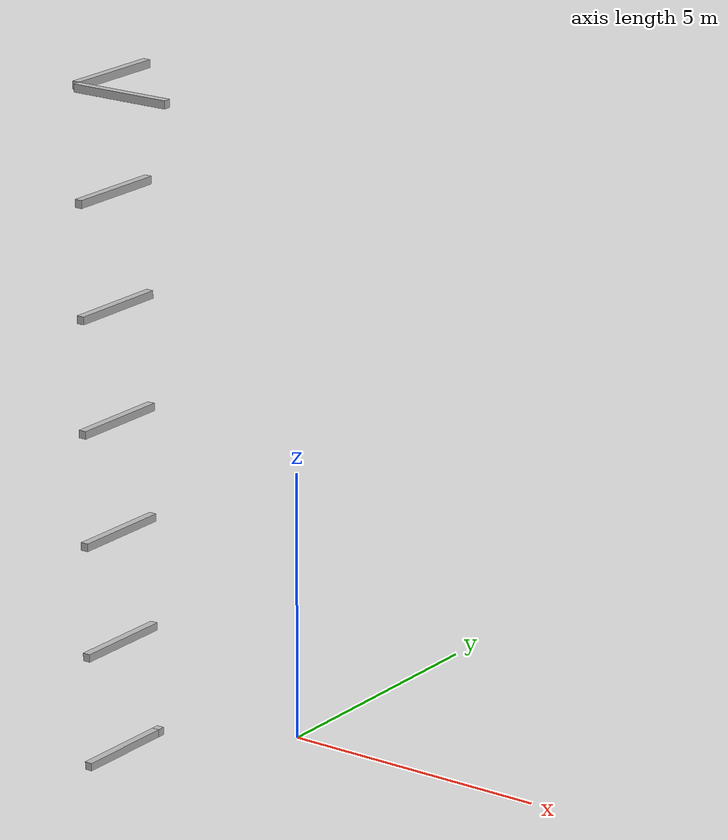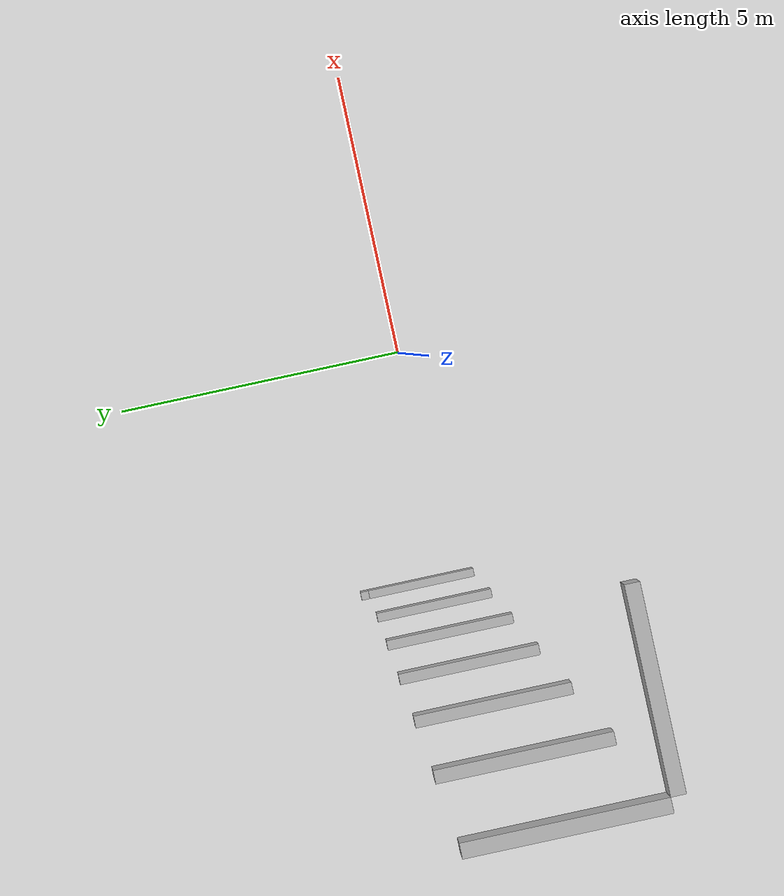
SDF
<sdf version="1.7">
 <world name="default">
  <model name="orthogonal_747_2.000.15_TS">
   <static>1</static>
   <link name="y_link_0_2_1">
    <inertial>
     <mass>1</mass>
     <inertia>
      <ixx>0.166667</ixx>
      <ixy>0</ixy>
      <ixz>0</ixz>
      <iyy>0.166667</iyy>
      <iyz>0</iyz>
      <izz>0.166667</izz>
     </inertia>
    </inertial>
    <pose>2.15 5.375 1.075 0 -0 0</pose>
    <visual name="visual_0">
     <laser_retro>351</laser_retro>
     <geometry><box><size>0.15 1e-06 0.15</size></box></geometry>
     <material>
      <script><name>Gazebo/Grey</name><uri>file://media/materials/scripts/gazebo.material</uri></script>
      <shader type="pixel"><normal_map>__default__</normal_map></shader>
      <ambient>0.678 0.498 0.659 1</ambient>
      <diffuse>0.7 0.7 0.7 1</diffuse>
      <specular>0.01 0.01 0.01 1</specular>
      <emissive>0 0 0 1</emissive>
     </material>
     <pose>0 -1 0 0 -0 0</pose>
     <transparency>1</transparency>
    </visual>
    <visual name="visual_1">
     <laser_retro>352</laser_retro>
     <geometry><box><size>0.15 1e-06 0.15</size></box></geometry>
     <material>
      <script><name>Gazebo/Grey</name><uri>file://media/materials/scripts/gazebo.material</uri></script>
      <shader type="pixel"><normal_map>__default__</normal_map></shader>
      <ambient>0.447 0.624 0.812 1</ambient>
      <diffuse>0.7 0.7 0.7 1</diffuse>
      <specular>0.01 0.01 0.01 1</specular>
      <emissive>0 0 0 1</emissive>
     </material>
     <pose>0 1 0 0 -0 0</pose>
     <transparency>1</transparency>
    </visual>
    <visual name="visual_2">
     <laser_retro>353</laser_retro>
     <geometry><box><size>0.15 2 1e-06</size></box></geometry>
     <material>
      <script><name>Gazebo/Grey</name><uri>file://media/materials/scripts/gazebo.material</uri></script>
      <shader type="pixel"><normal_map>__default__</normal_map></shader>
      <ambient>0.988 0.686 0.243 1</ambient>
      <diffuse>0.7 0.7 0.7 1</diffuse>
      <specular>0.01 0.01 0.01 1</specular>
      <emissive>0 0 0 1</emissive>
     </material>
     <pose>0 0 -0.075 0 -0 0</pose>
     <transparency>1</transparency>
    </visual>
    <visual name="visual_3">
     <laser_retro>354</laser_retro>
     <geometry><box><size>1e-06 2 0.15</size></box></geometry>
     <material>
      <script><name>Gazebo/Grey</name><uri>file://media/materials/scripts/gazebo.material</uri></script>
      <shader type="pixel"><normal_map>__default__</normal_map></shader>
      <ambient>0.988 0.914 0.31 1</ambient>
      <diffuse>0.7 0.7 0.7 1</diffuse>
      <specular>0.01 0.01 0.01 1</specular>
      <emissive>0 0 0 1</emissive>
     </material>
     <pose>0.075 0 0 0 -0 0</pose>
     <transparency>1</transparency>
    </visual>
    <visual name="visual_4">
     <laser_retro>355</laser_retro>
     <geometry><box><size>0.15 2 1e-06</size></box></geometry>
     <material>
      <script><name>Gazebo/Grey</name><uri>file://media/materials/scripts/gazebo.material</uri></script>
      <shader type="pixel"><normal_map>__default__</normal_map></shader>
      <ambient>0.937 0.161 0.161 1</ambient>
      <diffuse>0.7 0.7 0.7 1</diffuse>
      <specular>0.01 0.01 0.01 1</specular>
      <emissive>0 0 0 1</emissive>
     </material>
     <pose>0 0 0.075 0 -0 0</pose>
     <transparency>1</transparency>
    </visual>
    <visual name="visual_5">
     <laser_retro>356</laser_retro>
     <geometry><box><size>1e-06 2 0.15</size></box></geometry>
     <material>
      <script><name>Gazebo/Grey</name><uri>file://media/materials/scripts/gazebo.material</uri></script>
      <shader type="pixel"><normal_map>__default__</normal_map></shader>
      <ambient>0.541 0.886 0.204 1</ambient>
      <diffuse>0.7 0.7 0.7 1</diffuse>
      <specular>0.01 0.01 0.01 1</specular>
      <emissive>0 0 0 1</emissive>
     </material>
     <pose>-0.075 0 0 0 -0 0</pose>
     <transparency>1</transparency>
    </visual>
    <visual name="visual_texture">
     <geometry><box><size>0.149985 1.9998 0.149985</size></box></geometry>
     <material>
      <script>
       <uri>model://BASE_MODELS/simple_block_v2_textured/materials/scripts</uri>
       <uri>model://BASE_MODELS/simple_block_v2_textured/materials/textures</uri>
       <name>metal</name>
      </script>
     </material>
     <laser_retro>357</laser_retro>
    </visual>
    <collision name="collision">
     <geometry><box><size>0.15 2 0.15</size></box></geometry>
     <surface>
      <friction>
       <ode><mu>1</mu><mu2>1</mu2><fdir1>0 0 0</fdir1><slip1>0</slip1><slip2>0</slip2></ode>
       <torsional>
        <coefficient>1</coefficient>
        <patch_radius>0</patch_radius>
        <surface_radius>0</surface_radius>
        <use_patch_radius>1</use_patch_radius>
        <ode><slip>0</slip></ode>
       </torsional>
      </friction>
      <bounce><restitution_coefficient>0</restitution_coefficient><threshold>1e+06</threshold></bounce>
      <contact>
       <collide_without_contact>0</collide_without_contact>
       <collide_without_contact_bitmask>1</collide_without_contact_bitmask>
       <collide_bitmask>1</collide_bitmask>
       <ode>
        <soft_cfm>0</soft_cfm>
        <soft_erp>0.2</soft_erp>
        <kp>1e+13</kp>
        <kd>1</kd>
        <max_vel>0.01</max_vel>
        <min_depth>0</min_depth>
       </ode>
       <bullet>
        <split_impulse>1</split_impulse>
        <split_impulse_penetration_threshold>-0.01</split_impulse_penetration_threshold>
        <soft_cfm>0</soft_cfm>
        <soft_erp>0.2</soft_erp>
        <kp>1e+13</kp>
        <kd>1</kd>
       </bullet>
      </contact>
     </surface>
    </collision>
   </link>
   <link name="u_link_0_3_1">
    <inertial>
     <mass>1</mass>
     <inertia>
      <ixx>0.166667</ixx>
      <ixy>0</ixy>
      <ixz>0</ixz>
      <iyy>0.166667</iyy>
      <iyz>0</iyz>
      <izz>0.166667</izz>
     </inertia>
    </inertial>
    <pose>2.15 6.45 1.075 0 -0 0</pose>
    <visual name="visual_0">
     <laser_retro>519</laser_retro>
     <geometry><box><size>0.15 1e-06 0.15</size></box></geometry>
     <material>
      <script><name>Gazebo/Grey</name><uri>file://media/materials/scripts/gazebo.material</uri></script>
      <shader type="pixel"><normal_map>__default__</normal_map></shader>
      <ambient>0.678 0.498 0.659 1</ambient>
      <diffuse>0.7 0.7 0.7 1</diffuse>
      <specular>0.01 0.01 0.01 1</specular>
      <emissive>0 0 0 1</emissive>
     </material>
     <pose>0 -0.075 0 0 -0 0</pose>
     <transparency>1</transparency>
    </visual>
    <visual name="visual_1">
     <laser_retro>520</laser_retro>
     <geometry><box><size>0.15 1e-06 0.15</size></box></geometry>
     <material>
      <script><name>Gazebo/Grey</name><uri>file://media/materials/scripts/gazebo.material</uri></script>
      <shader type="pixel"><normal_map>__default__</normal_map></shader>
      <ambient>0.447 0.624 0.812 1</ambient>
      <diffuse>0.7 0.7 0.7 1</diffuse>
      <specular>0.01 0.01 0.01 1</specular>
      <emissive>0 0 0 1</emissive>
     </material>
     <pose>0 0.075 0 0 -0 0</pose>
     <transparency>1</transparency>
    </visual>
    <visual name="visual_2">
     <laser_retro>521</laser_retro>
     <geometry><box><size>0.15 0.15 1e-06</size></box></geometry>
     <material>
      <script><name>Gazebo/Grey</name><uri>file://media/materials/scripts/gazebo.material</uri></script>
      <shader type="pixel"><normal_map>__default__</normal_map></shader>
      <ambient>0.988 0.686 0.243 1</ambient>
      <diffuse>0.7 0.7 0.7 1</diffuse>
      <specular>0.01 0.01 0.01 1</specular>
      <emissive>0 0 0 1</emissive>
     </material>
     <pose>0 0 -0.075 0 -0 0</pose>
     <transparency>1</transparency>
    </visual>
    <visual name="visual_3">
     <laser_retro>522</laser_retro>
     <geometry><box><size>1e-06 0.15 0.15</size></box></geometry>
     <material>
      <script><name>Gazebo/Grey</name><uri>file://media/materials/scripts/gazebo.material</uri></script>
      <shader type="pixel"><normal_map>__default__</normal_map></shader>
      <ambient>0.988 0.914 0.31 1</ambient>
      <diffuse>0.7 0.7 0.7 1</diffuse>
      <specular>0.01 0.01 0.01 1</specular>
      <emissive>0 0 0 1</emissive>
     </material>
     <pose>0.075 0 0 0 -0 0</pose>
     <transparency>1</transparency>
    </visual>
    <visual name="visual_4">
     <laser_retro>523</laser_retro>
     <geometry><box><size>0.15 0.15 1e-06</size></box></geometry>
     <material>
      <script><name>Gazebo/Grey</name><uri>file://media/materials/scripts/gazebo.material</uri></script>
      <shader type="pixel"><normal_map>__default__</normal_map></shader>
      <ambient>0.937 0.161 0.161 1</ambient>
      <diffuse>0.7 0.7 0.7 1</diffuse>
      <specular>0.01 0.01 0.01 1</specular>
      <emissive>0 0 0 1</emissive>
     </material>
     <pose>0 0 0.075 0 -0 0</pose>
     <transparency>1</transparency>
    </visual>
    <visual name="visual_5">
     <laser_retro>524</laser_retro>
     <geometry><box><size>1e-06 0.15 0.15</size></box></geometry>
     <material>
      <script><name>Gazebo/Grey</name><uri>file://media/materials/scripts/gazebo.material</uri></script>
      <shader type="pixel"><normal_map>__default__</normal_map></shader>
      <ambient>0.541 0.886 0.204 1</ambient>
      <diffuse>0.7 0.7 0.7 1</diffuse>
      <specular>0.01 0.01 0.01 1</specular>
      <emissive>0 0 0 1</emissive>
     </material>
     <pose>-0.075 0 0 0 -0 0</pose>
     <transparency>1</transparency>
    </visual>
    <visual name="visual_texture">
     <geometry><box><size>0.149985 0.149985 0.149985</size></box></geometry>
     <material>
      <script>
       <uri>model://BASE_MODELS/simple_block_v2_textured/materials/scripts</uri>
       <uri>model://BASE_MODELS/simple_block_v2_textured/materials/textures</uri>
       <name>metal</name>
      </script>
     </material>
     <laser_retro>525</laser_retro>
    </visual>
    <collision name="collision">
     <geometry><box><size>0.15 0.15 0.15</size></box></geometry>
     <surface>
      <friction>
       <ode><mu>1</mu><mu2>1</mu2><fdir1>0 0 0</fdir1><slip1>0</slip1><slip2>0</slip2></ode>
       <torsional>
        <coefficient>1</coefficient>
        <patch_radius>0</patch_radius>
        <surface_radius>0</surface_radius>
        <use_patch_radius>1</use_patch_radius>
        <ode><slip>0</slip></ode>
       </torsional>
      </friction>
      <bounce><restitution_coefficient>0</restitution_coefficient><threshold>1e+06</threshold></bounce>
      <contact>
       <collide_without_contact>0</collide_without_contact>
       <collide_without_contact_bitmask>1</collide_without_contact_bitmask>
       <collide_bitmask>1</collide_bitmask>
       <ode>
        <soft_cfm>0</soft_cfm>
        <soft_erp>0.2</soft_erp>
        <kp>1e+13</kp>
        <kd>1</kd>
        <max_vel>0.01</max_vel>
        <min_depth>0</min_depth>
       </ode>
       <bullet>
        <split_impulse>1</split_impulse>
        <split_impulse_penetration_threshold>-0.01</split_impulse_penetration_threshold>
        <soft_cfm>0</soft_cfm>
        <soft_erp>0.2</soft_erp>
        <kp>1e+13</kp>
        <kd>1</kd>
       </bullet>
      </contact>
     </surface>
    </collision>
   </link>
   <link name="y_link_1_2_1">
    <inertial>
     <mass>1</mass>
     <inertia>
      <ixx>0.166667</ixx>
      <ixy>0</ixy>
      <ixz>0</ixz>
      <iyy>0.166667</iyy>
      <iyz>0</iyz>
      <izz>0.166667</izz>
     </inertia>
    </inertial>
    <pose>2.15 5.375 3.225 0 -0 0</pose>
    <visual name="visual_0">
     <laser_retro>1177</laser_retro>
     <geometry><box><size>0.15 1e-06 0.15</size></box></geometry>
     <material>
      <script><name>Gazebo/Grey</name><uri>file://media/materials/scripts/gazebo.material</uri></script>
      <shader type="pixel"><normal_map>__default__</normal_map></shader>
      <ambient>0.678 0.498 0.659 1</ambient>
      <diffuse>0.7 0.7 0.7 1</diffuse>
      <specular>0.01 0.01 0.01 1</specular>
      <emissive>0 0 0 1</emissive>
     </material>
     <pose>0 -1 0 0 -0 0</pose>
     <transparency>1</transparency>
    </visual>
    <visual name="visual_1">
     <laser_retro>1178</laser_retro>
     <geometry><box><size>0.15 1e-06 0.15</size></box></geometry>
     <material>
      <script><name>Gazebo/Grey</name><uri>file://media/materials/scripts/gazebo.material</uri></script>
      <shader type="pixel"><normal_map>__default__</normal_map></shader>
      <ambient>0.447 0.624 0.812 1</ambient>
      <diffuse>0.7 0.7 0.7 1</diffuse>
      <specular>0.01 0.01 0.01 1</specular>
      <emissive>0 0 0 1</emissive>
     </material>
     <pose>0 1 0 0 -0 0</pose>
     <transparency>1</transparency>
    </visual>
    <visual name="visual_2">
     <laser_retro>1179</laser_retro>
     <geometry><box><size>0.15 2 1e-06</size></box></geometry>
     <material>
      <script><name>Gazebo/Grey</name><uri>file://media/materials/scripts/gazebo.material</uri></script>
      <shader type="pixel"><normal_map>__default__</normal_map></shader>
      <ambient>0.988 0.686 0.243 1</ambient>
      <diffuse>0.7 0.7 0.7 1</diffuse>
      <specular>0.01 0.01 0.01 1</specular>
      <emissive>0 0 0 1</emissive>
     </material>
     <pose>0 0 -0.075 0 -0 0</pose>
     <transparency>1</transparency>
    </visual>
    <visual name="visual_3">
     <laser_retro>1180</laser_retro>
     <geometry><box><size>1e-06 2 0.15</size></box></geometry>
     <material>
      <script><name>Gazebo/Grey</name><uri>file://media/materials/scripts/gazebo.material</uri></script>
      <shader type="pixel"><normal_map>__default__</normal_map></shader>
      <ambient>0.988 0.914 0.31 1</ambient>
      <diffuse>0.7 0.7 0.7 1</diffuse>
      <specular>0.01 0.01 0.01 1</specular>
      <emissive>0 0 0 1</emissive>
     </material>
     <pose>0.075 0 0 0 -0 0</pose>
     <transparency>1</transparency>
    </visual>
    <visual name="visual_4">
     <laser_retro>1181</laser_retro>
     <geometry><box><size>0.15 2 1e-06</size></box></geometry>
     <material>
      <script><name>Gazebo/Grey</name><uri>file://media/materials/scripts/gazebo.material</uri></script>
      <shader type="pixel"><normal_map>__default__</normal_map></shader>
      <ambient>0.937 0.161 0.161 1</ambient>
      <diffuse>0.7 0.7 0.7 1</diffuse>
      <specular>0.01 0.01 0.01 1</specular>
      <emissive>0 0 0 1</emissive>
     </material>
     <pose>0 0 0.075 0 -0 0</pose>
     <transparency>1</transparency>
    </visual>
    <visual name="visual_5">
     <laser_retro>1182</laser_retro>
     <geometry><box><size>1e-06 2 0.15</size></box></geometry>
     <material>
      <script><name>Gazebo/Grey</name><uri>file://media/materials/scripts/gazebo.material</uri></script>
      <shader type="pixel"><normal_map>__default__</normal_map></shader>
      <ambient>0.541 0.886 0.204 1</ambient>
      <diffuse>0.7 0.7 0.7 1</diffuse>
      <specular>0.01 0.01 0.01 1</specular>
      <emissive>0 0 0 1</emissive>
     </material>
     <pose>-0.075 0 0 0 -0 0</pose>
     <transparency>1</transparency>
    </visual>
    <visual name="visual_texture">
     <geometry><box><size>0.149985 1.9998 0.149985</size></box></geometry>
     <material>
      <script>
       <uri>model://BASE_MODELS/simple_block_v2_textured/materials/scripts</uri>
       <uri>model://BASE_MODELS/simple_block_v2_textured/materials/textures</uri>
       <name>metal</name>
      </script>
     </material>
     <laser_retro>1183</laser_retro>
    </visual>
    <collision name="collision">
     <geometry><box><size>0.15 2 0.15</size></box></geometry>
     <surface>
      <friction>
       <ode><mu>1</mu><mu2>1</mu2><fdir1>0 0 0</fdir1><slip1>0</slip1><slip2>0</slip2></ode>
       <torsional>
        <coefficient>1</coefficient>
        <patch_radius>0</patch_radius>
        <surface_radius>0</surface_radius>
        <use_patch_radius>1</use_patch_radius>
        <ode><slip>0</slip></ode>
       </torsional>
      </friction>
      <bounce><restitution_coefficient>0</restitution_coefficient><threshold>1e+06</threshold></bounce>
      <contact>
       <collide_without_contact>0</collide_without_contact>
       <collide_without_contact_bitmask>1</collide_without_contact_bitmask>
       <collide_bitmask>1</collide_bitmask>
       <ode>
        <soft_cfm>0</soft_cfm>
        <soft_erp>0.2</soft_erp>
        <kp>1e+13</kp>
        <kd>1</kd>
        <max_vel>0.01</max_vel>
        <min_depth>0</min_depth>
       </ode>
       <bullet>
        <split_impulse>1</split_impulse>
        <split_impulse_penetration_threshold>-0.01</split_impulse_penetration_threshold>
        <soft_cfm>0</soft_cfm>
        <soft_erp>0.2</soft_erp>
        <kp>1e+13</kp>
        <kd>1</kd>
       </bullet>
      </contact>
     </surface>
    </collision>
   </link>
   <link name="y_link_2_2_1">
    <inertial>
     <mass>1</mass>
     <inertia>
      <ixx>0.166667</ixx>
      <ixy>0</ixy>
      <ixz>0</ixz>
      <iyy>0.166667</iyy>
      <iyz>0</iyz>
      <izz>0.166667</izz>
     </inertia>
    </inertial>
    <pose>2.15 5.375 5.375 0 -0 0</pose>
    <visual name="visual_0">
     <laser_retro>2080</laser_retro>
     <geometry><box><size>0.15 1e-06 0.15</size></box></geometry>
     <material>
      <script><name>Gazebo/Grey</name><uri>file://media/materials/scripts/gazebo.material</uri></script>
      <shader type="pixel"><normal_map>__default__</normal_map></shader>
      <ambient>0.678 0.498 0.659 1</ambient>
      <diffuse>0.7 0.7 0.7 1</diffuse>
      <specular>0.01 0.01 0.01 1</specular>
      <emissive>0 0 0 1</emissive>
     </material>
     <pose>0 -1 0 0 -0 0</pose>
     <transparency>1</transparency>
    </visual>
    <visual name="visual_1">
     <laser_retro>2081</laser_retro>
     <geometry><box><size>0.15 1e-06 0.15</size></box></geometry>
     <material>
      <script><name>Gazebo/Grey</name><uri>file://media/materials/scripts/gazebo.material</uri></script>
      <shader type="pixel"><normal_map>__default__</normal_map></shader>
      <ambient>0.447 0.624 0.812 1</ambient>
      <diffuse>0.7 0.7 0.7 1</diffuse>
      <specular>0.01 0.01 0.01 1</specular>
      <emissive>0 0 0 1</emissive>
     </material>
     <pose>0 1 0 0 -0 0</pose>
     <transparency>1</transparency>
    </visual>
    <visual name="visual_2">
     <laser_retro>2082</laser_retro>
     <geometry><box><size>0.15 2 1e-06</size></box></geometry>
     <material>
      <script><name>Gazebo/Grey</name><uri>file://media/materials/scripts/gazebo.material</uri></script>
      <shader type="pixel"><normal_map>__default__</normal_map></shader>
      <ambient>0.988 0.686 0.243 1</ambient>
      <diffuse>0.7 0.7 0.7 1</diffuse>
      <specular>0.01 0.01 0.01 1</specular>
      <emissive>0 0 0 1</emissive>
     </material>
     <pose>0 0 -0.075 0 -0 0</pose>
     <transparency>1</transparency>
    </visual>
    <visual name="visual_3">
     <laser_retro>2083</laser_retro>
     <geometry><box><size>1e-06 2 0.15</size></box></geometry>
     <material>
      <script><name>Gazebo/Grey</name><uri>file://media/materials/scripts/gazebo.material</uri></script>
      <shader type="pixel"><normal_map>__default__</normal_map></shader>
      <ambient>0.988 0.914 0.31 1</ambient>
      <diffuse>0.7 0.7 0.7 1</diffuse>
      <specular>0.01 0.01 0.01 1</specular>
      <emissive>0 0 0 1</emissive>
     </material>
     <pose>0.075 0 0 0 -0 0</pose>
     <transparency>1</transparency>
    </visual>
    <visual name="visual_4">
     <laser_retro>2084</laser_retro>
     <geometry><box><size>0.15 2 1e-06</size></box></geometry>
     <material>
      <script><name>Gazebo/Grey</name><uri>file://media/materials/scripts/gazebo.material</uri></script>
      <shader type="pixel"><normal_map>__default__</normal_map></shader>
      <ambient>0.937 0.161 0.161 1</ambient>
      <diffuse>0.7 0.7 0.7 1</diffuse>
      <specular>0.01 0.01 0.01 1</specular>
      <emissive>0 0 0 1</emissive>
     </material>
     <pose>0 0 0.075 0 -0 0</pose>
     <transparency>1</transparency>
    </visual>
    <visual name="visual_5">
     <laser_retro>2085</laser_retro>
     <geometry><box><size>1e-06 2 0.15</size></box></geometry>
     <material>
      <script><name>Gazebo/Grey</name><uri>file://media/materials/scripts/gazebo.material</uri></script>
      <shader type="pixel"><normal_map>__default__</normal_map></shader>
      <ambient>0.541 0.886 0.204 1</ambient>
      <diffuse>0.7 0.7 0.7 1</diffuse>
      <specular>0.01 0.01 0.01 1</specular>
      <emissive>0 0 0 1</emissive>
     </material>
     <pose>-0.075 0 0 0 -0 0</pose>
     <transparency>1</transparency>
    </visual>
    <visual name="visual_texture">
     <geometry><box><size>0.149985 1.9998 0.149985</size></box></geometry>
     <material>
      <script>
       <uri>model://BASE_MODELS/simple_block_v2_textured/materials/scripts</uri>
       <uri>model://BASE_MODELS/simple_block_v2_textured/materials/textures</uri>
       <name>metal</name>
      </script>
     </material>
     <laser_retro>2086</laser_retro>
    </visual>
    <collision name="collision">
     <geometry><box><size>0.15 2 0.15</size></box></geometry>
     <surface>
      <friction>
       <ode><mu>1</mu><mu2>1</mu2><fdir1>0 0 0</fdir1><slip1>0</slip1><slip2>0</slip2></ode>
       <torsional>
        <coefficient>1</coefficient>
        <patch_radius>0</patch_radius>
        <surface_radius>0</surface_radius>
        <use_patch_radius>1</use_patch_radius>
        <ode><slip>0</slip></ode>
       </torsional>
      </friction>
      <bounce><restitution_coefficient>0</restitution_coefficient><threshold>1e+06</threshold></bounce>
      <contact>
       <collide_without_contact>0</collide_without_contact>
       <collide_without_contact_bitmask>1</collide_without_contact_bitmask>
       <collide_bitmask>1</collide_bitmask>
       <ode>
        <soft_cfm>0</soft_cfm>
        <soft_erp>0.2</soft_erp>
        <kp>1e+13</kp>
        <kd>1</kd>
        <max_vel>0.01</max_vel>
        <min_depth>0</min_depth>
       </ode>
       <bullet>
        <split_impulse>1</split_impulse>
        <split_impulse_penetration_threshold>-0.01</split_impulse_penetration_threshold>
        <soft_cfm>0</soft_cfm>
        <soft_erp>0.2</soft_erp>
        <kp>1e+13</kp>
        <kd>1</kd>
       </bullet>
      </contact>
     </surface>
    </collision>
   </link>
   <link name="y_link_3_2_1">
    <inertial>
     <mass>1</mass>
     <inertia>
      <ixx>0.166667</ixx>
      <ixy>0</ixy>
      <ixz>0</ixz>
      <iyy>0.166667</iyy>
      <iyz>0</iyz>
      <izz>0.166667</izz>
     </inertia>
    </inertial>
    <pose>2.15 5.375 7.525 0 -0 0</pose>
    <visual name="visual_0">
     <laser_retro>2983</laser_retro>
     <geometry><box><size>0.15 1e-06 0.15</size></box></geometry>
     <material>
      <script><name>Gazebo/Grey</name><uri>file://media/materials/scripts/gazebo.material</uri></script>
      <shader type="pixel"><normal_map>__default__</normal_map></shader>
      <ambient>0.678 0.498 0.659 1</ambient>
      <diffuse>0.7 0.7 0.7 1</diffuse>
      <specular>0.01 0.01 0.01 1</specular>
      <emissive>0 0 0 1</emissive>
     </material>
     <pose>0 -1 0 0 -0 0</pose>
     <transparency>1</transparency>
    </visual>
    <visual name="visual_1">
     <laser_retro>2984</laser_retro>
     <geometry><box><size>0.15 1e-06 0.15</size></box></geometry>
     <material>
      <script><name>Gazebo/Grey</name><uri>file://media/materials/scripts/gazebo.material</uri></script>
      <shader type="pixel"><normal_map>__default__</normal_map></shader>
      <ambient>0.447 0.624 0.812 1</ambient>
      <diffuse>0.7 0.7 0.7 1</diffuse>
      <specular>0.01 0.01 0.01 1</specular>
      <emissive>0 0 0 1</emissive>
     </material>
     <pose>0 1 0 0 -0 0</pose>
     <transparency>1</transparency>
    </visual>
    <visual name="visual_2">
     <laser_retro>2985</laser_retro>
     <geometry><box><size>0.15 2 1e-06</size></box></geometry>
     <material>
      <script><name>Gazebo/Grey</name><uri>file://media/materials/scripts/gazebo.material</uri></script>
      <shader type="pixel"><normal_map>__default__</normal_map></shader>
      <ambient>0.988 0.686 0.243 1</ambient>
      <diffuse>0.7 0.7 0.7 1</diffuse>
      <specular>0.01 0.01 0.01 1</specular>
      <emissive>0 0 0 1</emissive>
     </material>
     <pose>0 0 -0.075 0 -0 0</pose>
     <transparency>1</transparency>
    </visual>
    <visual name="visual_3">
     <laser_retro>2986</laser_retro>
     <geometry><box><size>1e-06 2 0.15</size></box></geometry>
     <material>
      <script><name>Gazebo/Grey</name><uri>file://media/materials/scripts/gazebo.material</uri></script>
      <shader type="pixel"><normal_map>__default__</normal_map></shader>
      <ambient>0.988 0.914 0.31 1</ambient>
      <diffuse>0.7 0.7 0.7 1</diffuse>
      <specular>0.01 0.01 0.01 1</specular>
      <emissive>0 0 0 1</emissive>
     </material>
     <pose>0.075 0 0 0 -0 0</pose>
     <transparency>1</transparency>
    </visual>
    <visual name="visual_4">
     <laser_retro>2987</laser_retro>
     <geometry><box><size>0.15 2 1e-06</size></box></geometry>
     <material>
      <script><name>Gazebo/Grey</name><uri>file://media/materials/scripts/gazebo.material</uri></script>
      <shader type="pixel"><normal_map>__default__</normal_map></shader>
      <ambient>0.937 0.161 0.161 1</ambient>
      <diffuse>0.7 0.7 0.7 1</diffuse>
      <specular>0.01 0.01 0.01 1</specular>
      <emissive>0 0 0 1</emissive>
     </material>
     <pose>0 0 0.075 0 -0 0</pose>
     <transparency>1</transparency>
    </visual>
    <visual name="visual_5">
     <laser_retro>2988</laser_retro>
     <geometry><box><size>1e-06 2 0.15</size></box></geometry>
     <material>
      <script><name>Gazebo/Grey</name><uri>file://media/materials/scripts/gazebo.material</uri></script>
      <shader type="pixel"><normal_map>__default__</normal_map></shader>
      <ambient>0.541 0.886 0.204 1</ambient>
      <diffuse>0.7 0.7 0.7 1</diffuse>
      <specular>0.01 0.01 0.01 1</specular>
      <emissive>0 0 0 1</emissive>
     </material>
     <pose>-0.075 0 0 0 -0 0</pose>
     <transparency>1</transparency>
    </visual>
    <visual name="visual_texture">
     <geometry><box><size>0.149985 1.9998 0.149985</size></box></geometry>
     <material>
      <script>
       <uri>model://BASE_MODELS/simple_block_v2_textured/materials/scripts</uri>
       <uri>model://BASE_MODELS/simple_block_v2_textured/materials/textures</uri>
       <name>metal</name>
      </script>
     </material>
     <laser_retro>2989</laser_retro>
    </visual>
    <collision name="collision">
     <geometry><box><size>0.15 2 0.15</size></box></geometry>
     <surface>
      <friction>
       <ode><mu>1</mu><mu2>1</mu2><fdir1>0 0 0</fdir1><slip1>0</slip1><slip2>0</slip2></ode>
       <torsional>
        <coefficient>1</coefficient>
        <patch_radius>0</patch_radius>
        <surface_radius>0</surface_radius>
        <use_patch_radius>1</use_patch_radius>
        <ode><slip>0</slip></ode>
       </torsional>
      </friction>
      <bounce><restitution_coefficient>0</restitution_coefficient><threshold>1e+06</threshold></bounce>
      <contact>
       <collide_without_contact>0</collide_without_contact>
       <collide_without_contact_bitmask>1</collide_without_contact_bitmask>
       <collide_bitmask>1</collide_bitmask>
       <ode>
        <soft_cfm>0</soft_cfm>
        <soft_erp>0.2</soft_erp>
        <kp>1e+13</kp>
        <kd>1</kd>
        <max_vel>0.01</max_vel>
        <min_depth>0</min_depth>
       </ode>
       <bullet>
        <split_impulse>1</split_impulse>
        <split_impulse_penetration_threshold>-0.01</split_impulse_penetration_threshold>
        <soft_cfm>0</soft_cfm>
        <soft_erp>0.2</soft_erp>
        <kp>1e+13</kp>
        <kd>1</kd>
       </bullet>
      </contact>
     </surface>
    </collision>
   </link>
   <link name="y_link_4_2_1">
    <inertial>
     <mass>1</mass>
     <inertia>
      <ixx>0.166667</ixx>
      <ixy>0</ixy>
      <ixz>0</ixz>
      <iyy>0.166667</iyy>
      <iyz>0</iyz>
      <izz>0.166667</izz>
     </inertia>
    </inertial>
    <pose>2.15 5.375 9.675 0 -0 0</pose>
    <visual name="visual_0">
     <laser_retro>3886</laser_retro>
     <geometry><box><size>0.15 1e-06 0.15</size></box></geometry>
     <material>
      <script><name>Gazebo/Grey</name><uri>file://media/materials/scripts/gazebo.material</uri></script>
      <shader type="pixel"><normal_map>__default__</normal_map></shader>
      <ambient>0.678 0.498 0.659 1</ambient>
      <diffuse>0.7 0.7 0.7 1</diffuse>
      <specular>0.01 0.01 0.01 1</specular>
      <emissive>0 0 0 1</emissive>
     </material>
     <pose>0 -1 0 0 -0 0</pose>
     <transparency>1</transparency>
    </visual>
    <visual name="visual_1">
     <laser_retro>3887</laser_retro>
     <geometry><box><size>0.15 1e-06 0.15</size></box></geometry>
     <material>
      <script><name>Gazebo/Grey</name><uri>file://media/materials/scripts/gazebo.material</uri></script>
      <shader type="pixel"><normal_map>__default__</normal_map></shader>
      <ambient>0.447 0.624 0.812 1</ambient>
      <diffuse>0.7 0.7 0.7 1</diffuse>
      <specular>0.01 0.01 0.01 1</specular>
      <emissive>0 0 0 1</emissive>
     </material>
     <pose>0 1 0 0 -0 0</pose>
     <transparency>1</transparency>
    </visual>
    <visual name="visual_2">
     <laser_retro>3888</laser_retro>
     <geometry><box><size>0.15 2 1e-06</size></box></geometry>
     <material>
      <script><name>Gazebo/Grey</name><uri>file://media/materials/scripts/gazebo.material</uri></script>
      <shader type="pixel"><normal_map>__default__</normal_map></shader>
      <ambient>0.988 0.686 0.243 1</ambient>
      <diffuse>0.7 0.7 0.7 1</diffuse>
      <specular>0.01 0.01 0.01 1</specular>
      <emissive>0 0 0 1</emissive>
     </material>
     <pose>0 0 -0.075 0 -0 0</pose>
     <transparency>1</transparency>
    </visual>
    <visual name="visual_3">
     <laser_retro>3889</laser_retro>
     <geometry><box><size>1e-06 2 0.15</size></box></geometry>
     <material>
      <script><name>Gazebo/Grey</name><uri>file://media/materials/scripts/gazebo.material</uri></script>
      <shader type="pixel"><normal_map>__default__</normal_map></shader>
      <ambient>0.988 0.914 0.31 1</ambient>
      <diffuse>0.7 0.7 0.7 1</diffuse>
      <specular>0.01 0.01 0.01 1</specular>
      <emissive>0 0 0 1</emissive>
     </material>
     <pose>0.075 0 0 0 -0 0</pose>
     <transparency>1</transparency>
    </visual>
    <visual name="visual_4">
     <laser_retro>3890</laser_retro>
     <geometry><box><size>0.15 2 1e-06</size></box></geometry>
     <material>
      <script><name>Gazebo/Grey</name><uri>file://media/materials/scripts/gazebo.material</uri></script>
      <shader type="pixel"><normal_map>__default__</normal_map></shader>
      <ambient>0.937 0.161 0.161 1</ambient>
      <diffuse>0.7 0.7 0.7 1</diffuse>
      <specular>0.01 0.01 0.01 1</specular>
      <emissive>0 0 0 1</emissive>
     </material>
     <pose>0 0 0.075 0 -0 0</pose>
     <transparency>1</transparency>
    </visual>
    <visual name="visual_5">
     <laser_retro>3891</laser_retro>
     <geometry><box><size>1e-06 2 0.15</size></box></geometry>
     <material>
      <script><name>Gazebo/Grey</name><uri>file://media/materials/scripts/gazebo.material</uri></script>
      <shader type="pixel"><normal_map>__default__</normal_map></shader>
      <ambient>0.541 0.886 0.204 1</ambient>
      <diffuse>0.7 0.7 0.7 1</diffuse>
      <specular>0.01 0.01 0.01 1</specular>
      <emissive>0 0 0 1</emissive>
     </material>
     <pose>-0.075 0 0 0 -0 0</pose>
     <transparency>1</transparency>
    </visual>
    <visual name="visual_texture">
     <geometry><box><size>0.149985 1.9998 0.149985</size></box></geometry>
     <material>
      <script>
       <uri>model://BASE_MODELS/simple_block_v2_textured/materials/scripts</uri>
       <uri>model://BASE_MODELS/simple_block_v2_textured/materials/textures</uri>
       <name>metal</name>
      </script>
     </material>
     <laser_retro>3892</laser_retro>
    </visual>
    <collision name="collision">
     <geometry><box><size>0.15 2 0.15</size></box></geometry>
     <surface>
      <friction>
       <ode><mu>1</mu><mu2>1</mu2><fdir1>0 0 0</fdir1><slip1>0</slip1><slip2>0</slip2></ode>
       <torsional>
        <coefficient>1</coefficient>
        <patch_radius>0</patch_radius>
        <surface_radius>0</surface_radius>
        <use_patch_radius>1</use_patch_radius>
        <ode><slip>0</slip></ode>
       </torsional>
      </friction>
      <bounce><restitution_coefficient>0</restitution_coefficient><threshold>1e+06</threshold></bounce>
      <contact>
       <collide_without_contact>0</collide_without_contact>
       <collide_without_contact_bitmask>1</collide_without_contact_bitmask>
       <collide_bitmask>1</collide_bitmask>
       <ode>
        <soft_cfm>0</soft_cfm>
        <soft_erp>0.2</soft_erp>
        <kp>1e+13</kp>
        <kd>1</kd>
        <max_vel>0.01</max_vel>
        <min_depth>0</min_depth>
       </ode>
       <bullet>
        <split_impulse>1</split_impulse>
        <split_impulse_penetration_threshold>-0.01</split_impulse_penetration_threshold>
        <soft_cfm>0</soft_cfm>
        <soft_erp>0.2</soft_erp>
        <kp>1e+13</kp>
        <kd>1</kd>
       </bullet>
      </contact>
     </surface>
    </collision>
   </link>
   <link name="y_link_5_2_1">
    <inertial>
     <mass>1</mass>
     <inertia>
      <ixx>0.166667</ixx>
      <ixy>0</ixy>
      <ixz>0</ixz>
      <iyy>0.166667</iyy>
      <iyz>0</iyz>
      <izz>0.166667</izz>
     </inertia>
    </inertial>
    <pose>2.15 5.375 11.825 0 -0 0</pose>
    <visual name="visual_0">
     <laser_retro>4789</laser_retro>
     <geometry><box><size>0.15 1e-06 0.15</size></box></geometry>
     <material>
      <script><name>Gazebo/Grey</name><uri>file://media/materials/scripts/gazebo.material</uri></script>
      <shader type="pixel"><normal_map>__default__</normal_map></shader>
      <ambient>0.678 0.498 0.659 1</ambient>
      <diffuse>0.7 0.7 0.7 1</diffuse>
      <specular>0.01 0.01 0.01 1</specular>
      <emissive>0 0 0 1</emissive>
     </material>
     <pose>0 -1 0 0 -0 0</pose>
     <transparency>1</transparency>
    </visual>
    <visual name="visual_1">
     <laser_retro>4790</laser_retro>
     <geometry><box><size>0.15 1e-06 0.15</size></box></geometry>
     <material>
      <script><name>Gazebo/Grey</name><uri>file://media/materials/scripts/gazebo.material</uri></script>
      <shader type="pixel"><normal_map>__default__</normal_map></shader>
      <ambient>0.447 0.624 0.812 1</ambient>
      <diffuse>0.7 0.7 0.7 1</diffuse>
      <specular>0.01 0.01 0.01 1</specular>
      <emissive>0 0 0 1</emissive>
     </material>
     <pose>0 1 0 0 -0 0</pose>
     <transparency>1</transparency>
    </visual>
    <visual name="visual_2">
     <laser_retro>4791</laser_retro>
     <geometry><box><size>0.15 2 1e-06</size></box></geometry>
     <material>
      <script><name>Gazebo/Grey</name><uri>file://media/materials/scripts/gazebo.material</uri></script>
      <shader type="pixel"><normal_map>__default__</normal_map></shader>
      <ambient>0.988 0.686 0.243 1</ambient>
      <diffuse>0.7 0.7 0.7 1</diffuse>
      <specular>0.01 0.01 0.01 1</specular>
      <emissive>0 0 0 1</emissive>
     </material>
     <pose>0 0 -0.075 0 -0 0</pose>
     <transparency>1</transparency>
    </visual>
    <visual name="visual_3">
     <laser_retro>4792</laser_retro>
     <geometry><box><size>1e-06 2 0.15</size></box></geometry>
     <material>
      <script><name>Gazebo/Grey</name><uri>file://media/materials/scripts/gazebo.material</uri></script>
      <shader type="pixel"><normal_map>__default__</normal_map></shader>
      <ambient>0.988 0.914 0.31 1</ambient>
      <diffuse>0.7 0.7 0.7 1</diffuse>
      <specular>0.01 0.01 0.01 1</specular>
      <emissive>0 0 0 1</emissive>
     </material>
     <pose>0.075 0 0 0 -0 0</pose>
     <transparency>1</transparency>
    </visual>
    <visual name="visual_4">
     <laser_retro>4793</laser_retro>
     <geometry><box><size>0.15 2 1e-06</size></box></geometry>
     <material>
      <script><name>Gazebo/Grey</name><uri>file://media/materials/scripts/gazebo.material</uri></script>
      <shader type="pixel"><normal_map>__default__</normal_map></shader>
      <ambient>0.937 0.161 0.161 1</ambient>
      <diffuse>0.7 0.7 0.7 1</diffuse>
      <specular>0.01 0.01 0.01 1</specular>
      <emissive>0 0 0 1</emissive>
     </material>
     <pose>0 0 0.075 0 -0 0</pose>
     <transparency>1</transparency>
    </visual>
    <visual name="visual_5">
     <laser_retro>4794</laser_retro>
     <geometry><box><size>1e-06 2 0.15</size></box></geometry>
     <material>
      <script><name>Gazebo/Grey</name><uri>file://media/materials/scripts/gazebo.material</uri></script>
      <shader type="pixel"><normal_map>__default__</normal_map></shader>
      <ambient>0.541 0.886 0.204 1</ambient>
      <diffuse>0.7 0.7 0.7 1</diffuse>
      <specular>0.01 0.01 0.01 1</specular>
      <emissive>0 0 0 1</emissive>
     </material>
     <pose>-0.075 0 0 0 -0 0</pose>
     <transparency>1</transparency>
    </visual>
    <visual name="visual_texture">
     <geometry><box><size>0.149985 1.9998 0.149985</size></box></geometry>
     <material>
      <script>
       <uri>model://BASE_MODELS/simple_block_v2_textured/materials/scripts</uri>
       <uri>model://BASE_MODELS/simple_block_v2_textured/materials/textures</uri>
       <name>metal</name>
      </script>
     </material>
     <laser_retro>4795</laser_retro>
    </visual>
    <collision name="collision">
     <geometry><box><size>0.15 2 0.15</size></box></geometry>
     <surface>
      <friction>
       <ode><mu>1</mu><mu2>1</mu2><fdir1>0 0 0</fdir1><slip1>0</slip1><slip2>0</slip2></ode>
       <torsional>
        <coefficient>1</coefficient>
        <patch_radius>0</patch_radius>
        <surface_radius>0</surface_radius>
        <use_patch_radius>1</use_patch_radius>
        <ode><slip>0</slip></ode>
       </torsional>
      </friction>
      <bounce><restitution_coefficient>0</restitution_coefficient><threshold>1e+06</threshold></bounce>
      <contact>
       <collide_without_contact>0</collide_without_contact>
       <collide_without_contact_bitmask>1</collide_without_contact_bitmask>
       <collide_bitmask>1</collide_bitmask>
       <ode>
        <soft_cfm>0</soft_cfm>
        <soft_erp>0.2</soft_erp>
        <kp>1e+13</kp>
        <kd>1</kd>
        <max_vel>0.01</max_vel>
        <min_depth>0</min_depth>
       </ode>
       <bullet>
        <split_impulse>1</split_impulse>
        <split_impulse_penetration_threshold>-0.01</split_impulse_penetration_threshold>
        <soft_cfm>0</soft_cfm>
        <soft_erp>0.2</soft_erp>
        <kp>1e+13</kp>
        <kd>1</kd>
       </bullet>
      </contact>
     </surface>
    </collision>
   </link>
   <link name="x_link_6_2_1">
    <inertial>
     <mass>1</mass>
     <inertia>
      <ixx>0.166667</ixx>
      <ixy>0</ixy>
      <ixz>0</ixz>
      <iyy>0.166667</iyy>
      <iyz>0</iyz>
      <izz>0.166667</izz>
     </inertia>
    </inertial>
    <pose>3.225 4.3 13.975 0 -0 0</pose>
    <visual name="visual_0">
     <laser_retro>5727</laser_retro>
     <geometry><box><size>2 1e-06 0.15</size></box></geometry>
     <material>
      <script><name>Gazebo/Grey</name><uri>file://media/materials/scripts/gazebo.material</uri></script>
      <shader type="pixel"><normal_map>__default__</normal_map></shader>
      <ambient>0.678 0.498 0.659 1</ambient>
      <diffuse>0.7 0.7 0.7 1</diffuse>
      <specular>0.01 0.01 0.01 1</specular>
      <emissive>0 0 0 1</emissive>
     </material>
     <pose>0 -0.075 0 0 -0 0</pose>
     <transparency>1</transparency>
    </visual>
    <visual name="visual_1">
     <laser_retro>5728</laser_retro>
     <geometry><box><size>2 1e-06 0.15</size></box></geometry>
     <material>
      <script><name>Gazebo/Grey</name><uri>file://media/materials/scripts/gazebo.material</uri></script>
      <shader type="pixel"><normal_map>__default__</normal_map></shader>
      <ambient>0.447 0.624 0.812 1</ambient>
      <diffuse>0.7 0.7 0.7 1</diffuse>
      <specular>0.01 0.01 0.01 1</specular>
      <emissive>0 0 0 1</emissive>
     </material>
     <pose>0 0.075 0 0 -0 0</pose>
     <transparency>1</transparency>
    </visual>
    <visual name="visual_2">
     <laser_retro>5729</laser_retro>
     <geometry><box><size>2 0.15 1e-06</size></box></geometry>
     <material>
      <script><name>Gazebo/Grey</name><uri>file://media/materials/scripts/gazebo.material</uri></script>
      <shader type="pixel"><normal_map>__default__</normal_map></shader>
      <ambient>0.988 0.686 0.243 1</ambient>
      <diffuse>0.7 0.7 0.7 1</diffuse>
      <specular>0.01 0.01 0.01 1</specular>
      <emissive>0 0 0 1</emissive>
     </material>
     <pose>0 0 -0.075 0 -0 0</pose>
     <transparency>1</transparency>
    </visual>
    <visual name="visual_3">
     <laser_retro>5730</laser_retro>
     <geometry><box><size>1e-06 0.15 0.15</size></box></geometry>
     <material>
      <script><name>Gazebo/Grey</name><uri>file://media/materials/scripts/gazebo.material</uri></script>
      <shader type="pixel"><normal_map>__default__</normal_map></shader>
      <ambient>0.988 0.914 0.31 1</ambient>
      <diffuse>0.7 0.7 0.7 1</diffuse>
      <specular>0.01 0.01 0.01 1</specular>
      <emissive>0 0 0 1</emissive>
     </material>
     <pose>1 0 0 0 -0 0</pose>
     <transparency>1</transparency>
    </visual>
    <visual name="visual_4">
     <laser_retro>5731</laser_retro>
     <geometry><box><size>2 0.15 1e-06</size></box></geometry>
     <material>
      <script><name>Gazebo/Grey</name><uri>file://media/materials/scripts/gazebo.material</uri></script>
      <shader type="pixel"><normal_map>__default__</normal_map></shader>
      <ambient>0.937 0.161 0.161 1</ambient>
      <diffuse>0.7 0.7 0.7 1</diffuse>
      <specular>0.01 0.01 0.01 1</specular>
      <emissive>0 0 0 1</emissive>
     </material>
     <pose>0 0 0.075 0 -0 0</pose>
     <transparency>1</transparency>
    </visual>
    <visual name="visual_5">
     <laser_retro>5732</laser_retro>
     <geometry><box><size>1e-06 0.15 0.15</size></box></geometry>
     <material>
      <script><name>Gazebo/Grey</name><uri>file://media/materials/scripts/gazebo.material</uri></script>
      <shader type="pixel"><normal_map>__default__</normal_map></shader>
      <ambient>0.541 0.886 0.204 1</ambient>
      <diffuse>0.7 0.7 0.7 1</diffuse>
      <specular>0.01 0.01 0.01 1</specular>
      <emissive>0 0 0 1</emissive>
     </material>
     <pose>-1 0 0 0 -0 0</pose>
     <transparency>1</transparency>
    </visual>
    <visual name="visual_texture">
     <geometry><box><size>1.9998 0.149985 0.149985</size></box></geometry>
     <material>
      <script>
       <uri>model://BASE_MODELS/simple_block_v2_textured/materials/scripts</uri>
       <uri>model://BASE_MODELS/simple_block_v2_textured/materials/textures</uri>
       <name>metal</name>
      </script>
     </material>
     <laser_retro>5733</laser_retro>
    </visual>
    <collision name="collision">
     <geometry><box><size>2 0.15 0.15</size></box></geometry>
     <surface>
      <friction>
       <ode><mu>1</mu><mu2>1</mu2><fdir1>0 0 0</fdir1><slip1>0</slip1><slip2>0</slip2></ode>
       <torsional>
        <coefficient>1</coefficient>
        <patch_radius>0</patch_radius>
        <surface_radius>0</surface_radius>
        <use_patch_radius>1</use_patch_radius>
        <ode><slip>0</slip></ode>
       </torsional>
      </friction>
      <bounce><restitution_coefficient>0</restitution_coefficient><threshold>1e+06</threshold></bounce>
      <contact>
       <collide_without_contact>0</collide_without_contact>
       <collide_without_contact_bitmask>1</collide_without_contact_bitmask>
       <collide_bitmask>1</collide_bitmask>
       <ode>
        <soft_cfm>0</soft_cfm>
        <soft_erp>0.2</soft_erp>
        <kp>1e+13</kp>
        <kd>1</kd>
        <max_vel>0.01</max_vel>
        <min_depth>0</min_depth>
       </ode>
       <bullet>
        <split_impulse>1</split_impulse>
        <split_impulse_penetration_threshold>-0.01</split_impulse_penetration_threshold>
        <soft_cfm>0</soft_cfm>
        <soft_erp>0.2</soft_erp>
        <kp>1e+13</kp>
        <kd>1</kd>
       </bullet>
      </contact>
     </surface>
    </collision>
   </link>
   <link name="y_link_6_2_1">
    <inertial>
     <mass>1</mass>
     <inertia>
      <ixx>0.166667</ixx>
      <ixy>0</ixy>
      <ixz>0</ixz>
      <iyy>0.166667</iyy>
      <iyz>0</iyz>
      <izz>0.166667</izz>
     </inertia>
    </inertial>
    <pose>2.15 5.375 13.975 0 -0 0</pose>
    <visual name="visual_0">
     <laser_retro>5734</laser_retro>
     <geometry><box><size>0.15 1e-06 0.15</size></box></geometry>
     <material>
      <script><name>Gazebo/Grey</name><uri>file://media/materials/scripts/gazebo.material</uri></script>
      <shader type="pixel"><normal_map>__default__</normal_map></shader>
      <ambient>0.678 0.498 0.659 1</ambient>
      <diffuse>0.7 0.7 0.7 1</diffuse>
      <specular>0.01 0.01 0.01 1</specular>
      <emissive>0 0 0 1</emissive>
     </material>
     <pose>0 -1 0 0 -0 0</pose>
     <transparency>1</transparency>
    </visual>
    <visual name="visual_1">
     <laser_retro>5735</laser_retro>
     <geometry><box><size>0.15 1e-06 0.15</size></box></geometry>
     <material>
      <script><name>Gazebo/Grey</name><uri>file://media/materials/scripts/gazebo.material</uri></script>
      <shader type="pixel"><normal_map>__default__</normal_map></shader>
      <ambient>0.447 0.624 0.812 1</ambient>
      <diffuse>0.7 0.7 0.7 1</diffuse>
      <specular>0.01 0.01 0.01 1</specular>
      <emissive>0 0 0 1</emissive>
     </material>
     <pose>0 1 0 0 -0 0</pose>
     <transparency>1</transparency>
    </visual>
    <visual name="visual_2">
     <laser_retro>5736</laser_retro>
     <geometry><box><size>0.15 2 1e-06</size></box></geometry>
     <material>
      <script><name>Gazebo/Grey</name><uri>file://media/materials/scripts/gazebo.material</uri></script>
      <shader type="pixel"><normal_map>__default__</normal_map></shader>
      <ambient>0.988 0.686 0.243 1</ambient>
      <diffuse>0.7 0.7 0.7 1</diffuse>
      <specular>0.01 0.01 0.01 1</specular>
      <emissive>0 0 0 1</emissive>
     </material>
     <pose>0 0 -0.075 0 -0 0</pose>
     <transparency>1</transparency>
    </visual>
    <visual name="visual_3">
     <laser_retro>5737</laser_retro>
     <geometry><box><size>1e-06 2 0.15</size></box></geometry>
     <material>
      <script><name>Gazebo/Grey</name><uri>file://media/materials/scripts/gazebo.material</uri></script>
      <shader type="pixel"><normal_map>__default__</normal_map></shader>
      <ambient>0.988 0.914 0.31 1</ambient>
      <diffuse>0.7 0.7 0.7 1</diffuse>
      <specular>0.01 0.01 0.01 1</specular>
      <emissive>0 0 0 1</emissive>
     </material>
     <pose>0.075 0 0 0 -0 0</pose>
     <transparency>1</transparency>
    </visual>
    <visual name="visual_4">
     <laser_retro>5738</laser_retro>
     <geometry><box><size>0.15 2 1e-06</size></box></geometry>
     <material>
      <script><name>Gazebo/Grey</name><uri>file://media/materials/scripts/gazebo.material</uri></script>
      <shader type="pixel"><normal_map>__default__</normal_map></shader>
      <ambient>0.937 0.161 0.161 1</ambient>
      <diffuse>0.7 0.7 0.7 1</diffuse>
      <specular>0.01 0.01 0.01 1</specular>
      <emissive>0 0 0 1</emissive>
     </material>
     <pose>0 0 0.075 0 -0 0</pose>
     <transparency>1</transparency>
    </visual>
    <visual name="visual_5">
     <laser_retro>5739</laser_retro>
     <geometry><box><size>1e-06 2 0.15</size></box></geometry>
     <material>
      <script><name>Gazebo/Grey</name><uri>file://media/materials/scripts/gazebo.material</uri></script>
      <shader type="pixel"><normal_map>__default__</normal_map></shader>
      <ambient>0.541 0.886 0.204 1</ambient>
      <diffuse>0.7 0.7 0.7 1</diffuse>
      <specular>0.01 0.01 0.01 1</specular>
      <emissive>0 0 0 1</emissive>
     </material>
     <pose>-0.075 0 0 0 -0 0</pose>
     <transparency>1</transparency>
    </visual>
    <visual name="visual_texture">
     <geometry><box><size>0.149985 1.9998 0.149985</size></box></geometry>
     <material>
      <script>
       <uri>model://BASE_MODELS/simple_block_v2_textured/materials/scripts</uri>
       <uri>model://BASE_MODELS/simple_block_v2_textured/materials/textures</uri>
       <name>metal</name>
      </script>
     </material>
     <laser_retro>5740</laser_retro>
    </visual>
    <collision name="collision">
     <geometry><box><size>0.15 2 0.15</size></box></geometry>
     <surface>
      <friction>
       <ode><mu>1</mu><mu2>1</mu2><fdir1>0 0 0</fdir1><slip1>0</slip1><slip2>0</slip2></ode>
       <torsional>
        <coefficient>1</coefficient>
        <patch_radius>0</patch_radius>
        <surface_radius>0</surface_radius>
        <use_patch_radius>1</use_patch_radius>
        <ode><slip>0</slip></ode>
       </torsional>
      </friction>
      <bounce><restitution_coefficient>0</restitution_coefficient><threshold>1e+06</threshold></bounce>
      <contact>
       <collide_without_contact>0</collide_without_contact>
       <collide_without_contact_bitmask>1</collide_without_contact_bitmask>
       <collide_bitmask>1</collide_bitmask>
       <ode>
        <soft_cfm>0</soft_cfm>
        <soft_erp>0.2</soft_erp>
        <kp>1e+13</kp>
        <kd>1</kd>
        <max_vel>0.01</max_vel>
        <min_depth>0</min_depth>
       </ode>
       <bullet>
        <split_impulse>1</split_impulse>
        <split_impulse_penetration_threshold>-0.01</split_impulse_penetration_threshold>
        <soft_cfm>0</soft_cfm>
        <soft_erp>0.2</soft_erp>
        <kp>1e+13</kp>
        <kd>1</kd>
       </bullet>
      </contact>
     </surface>
    </collision>
   </link>
   <pose>-6.47624 -5 -2.5 0 -0 0</pose>
  </model>
 </world>
</sdf>
